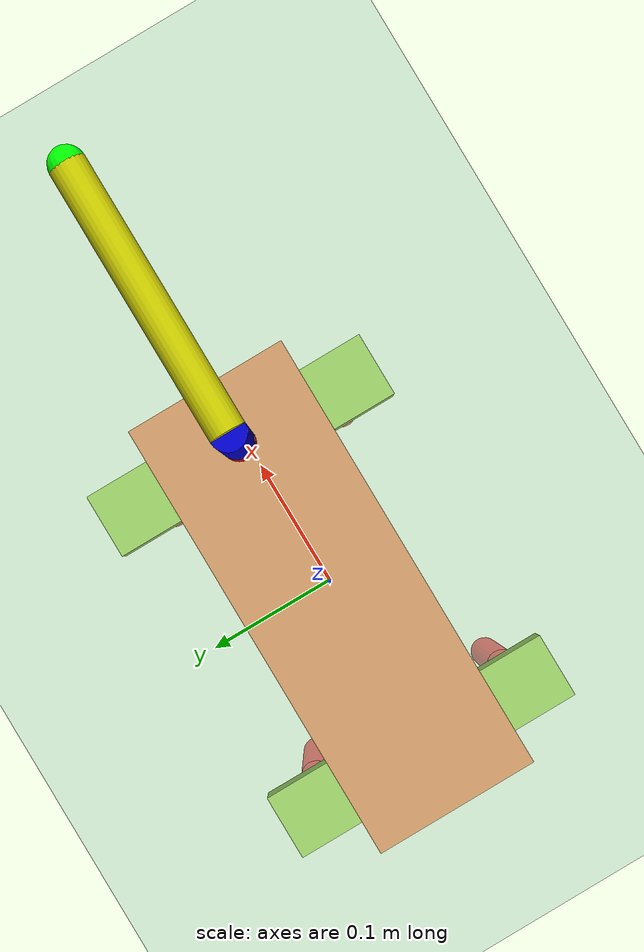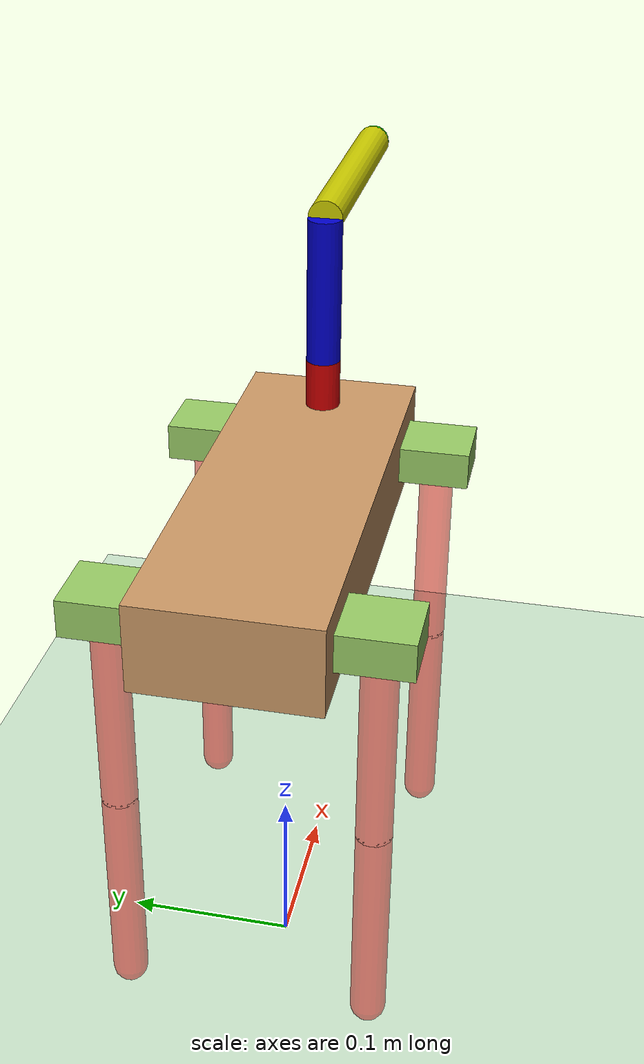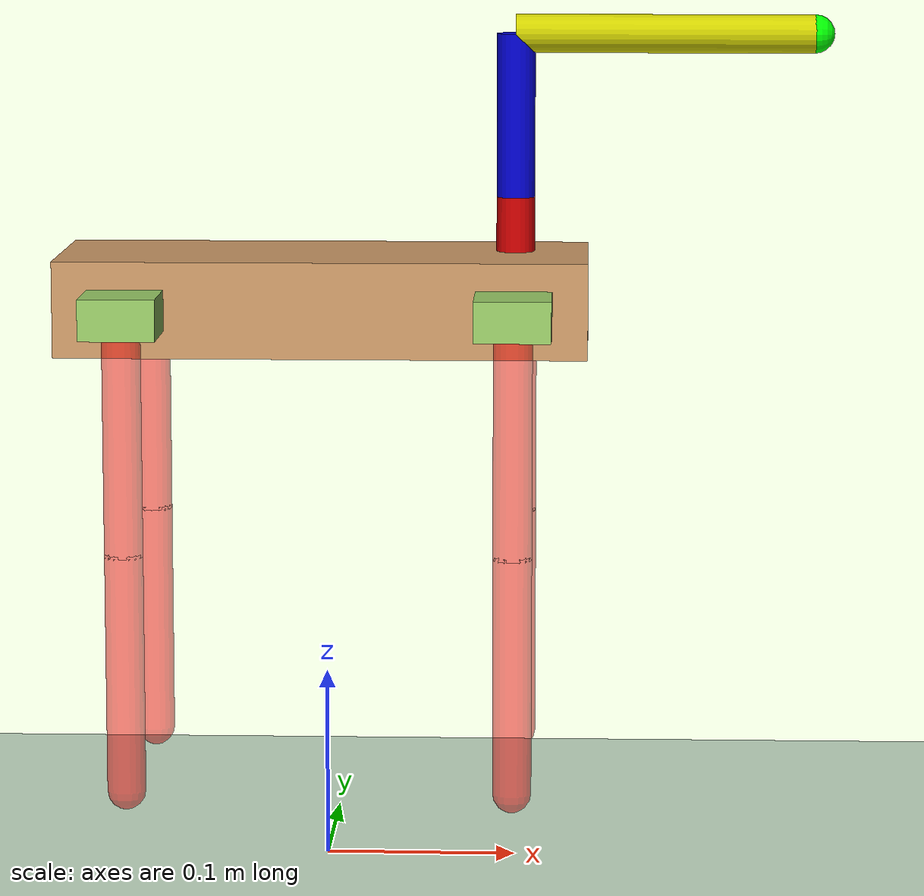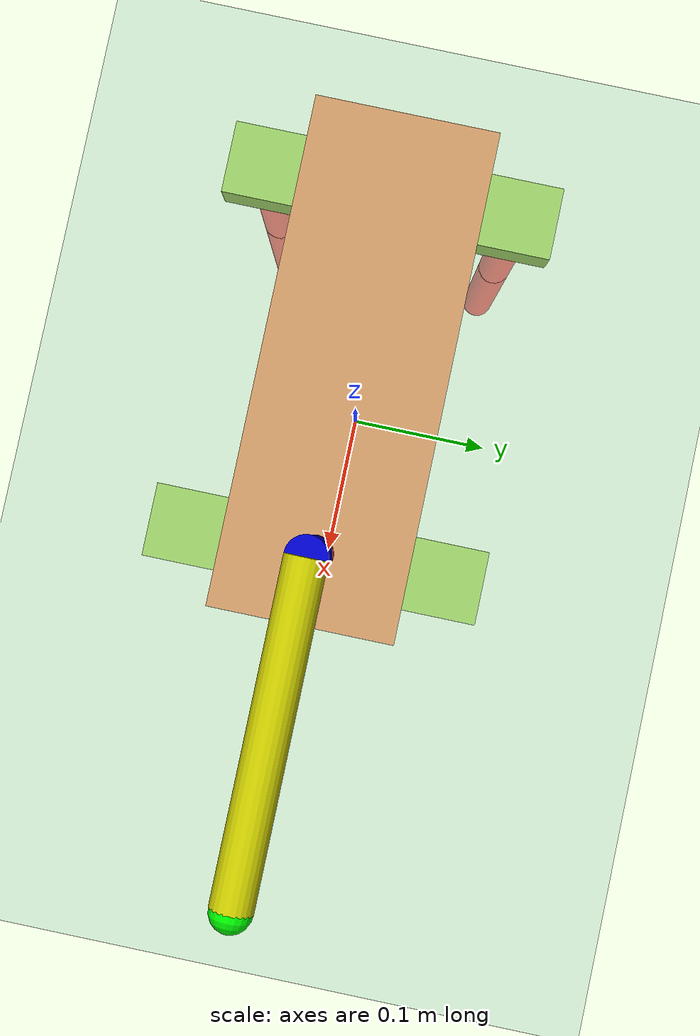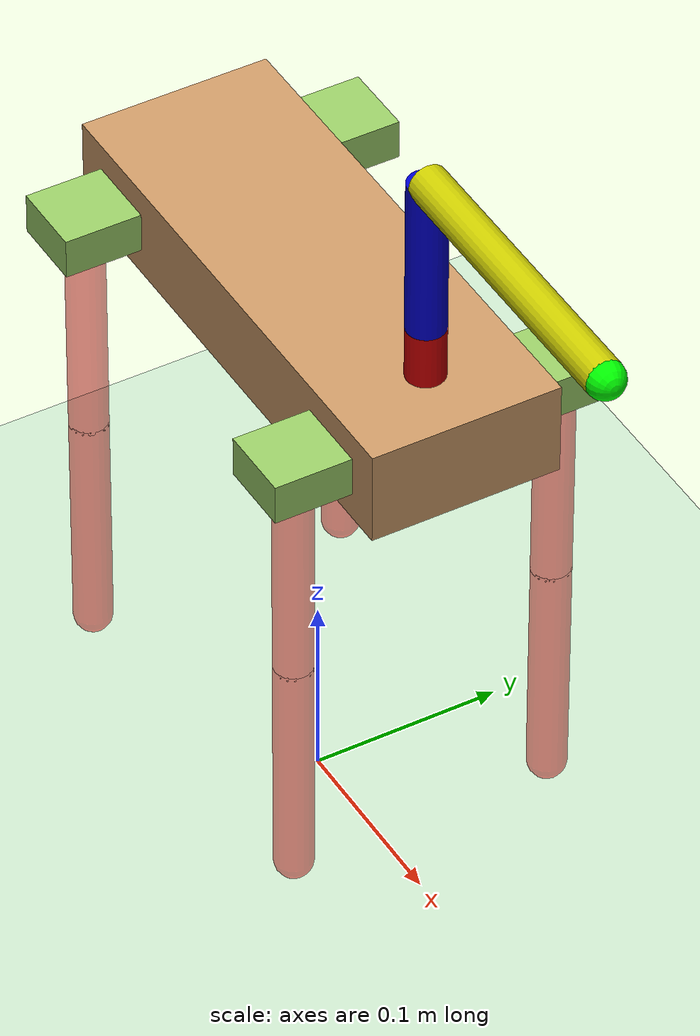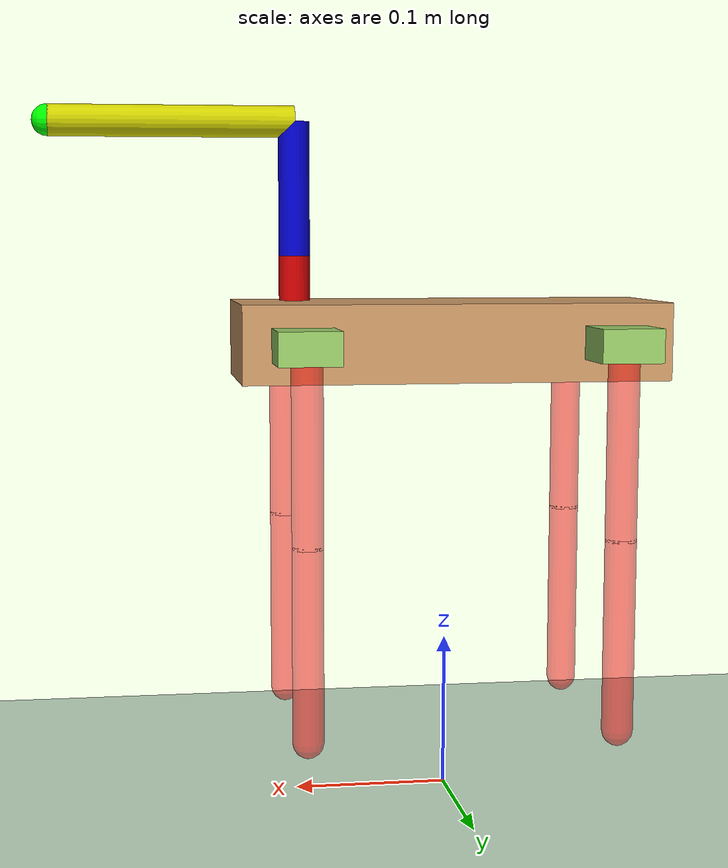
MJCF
<mujoco model="cheetah">
    <compiler angle="radian" coordinate="local" inertiafromgeom="false"/>

    <default>
        <joint armature="0.01936" stiffness="0"/>
        <geom conaffinity="0" condim="3" contype="1" friction="1.5 .1 .1" rgba="0.8 0.6 .4 1"/>
        <position forcelimited="true"/>
    </default>

    <size nstack="300000" nuser_geom="1"/>

    <asset>
        <texture builtin="gradient" height="100" rgb1="1 1 1" rgb2="0 0 0" type="skybox" width="100"/>
        <texture builtin="flat" height="1278" mark="cross" markrgb="1 1 1" name="texgeom" random="0.01"
                 rgb1="0.8 0.6 0.4" rgb2="0.8 0.6 0.4" type="cube" width="127"/>
        <texture builtin="checker" height="100" name="texplane" rgb1="0 0 0" rgb2="0.8 0.8 0.8" type="2d" width="100"/>
        <material name="MatPlane" reflectance="0.5" shininess="1" specular="1" texrepeat="60 60" texture="texplane"/>
        <material name="geom" texture="texgeom" texuniform="true"/>
    </asset>

    <worldbody>
        <geom conaffinity="1" condim="3" material="MatPlane" name="floor" pos="0 0 0" rgba="0.8 0.9 0.8 1"
              size="40 40 40" type="plane"/>
        <body name="torso" pos="0 0 0.3">
            <inertial pos="0 0 0" mass="0.56" diaginertia="0.0005532 0.0037619999999999997 0.004011000000000001"/>
            <geom pos="0 0 0" name="torso" size="0.138 0.05 0.025" type="box"/>
            <site name="imu_site" pos="0 0 0" size=".01 .01 .01" type="box"/>

            <body name="fr_module" pos="0.1 -0.04 0">
                <geom pos="0 -0.0132 0" name="fr_block" type="box" size="0.0197 0.0372 0.0107" rgba="0.6 0.8 .4 1"/>
                <joint axis="1 0 0" name="fr_x" pos="0 0 0" limited="true" range="-1.57 1.57" type="hinge"
                       damping="1.049"/>
                <inertial pos="0 0 0" mass="0.08" diaginertia="3.698e-05 7.127e-06 4.075e-05"/>
                <body name="fr" pos="0 -0.03 0">
                    <joint axis="0 1 0" name="fr_y" pos="0 0 0" limited="true" range="-1.57 1.57" type="hinge"
                           damping="1.049"/>
                    <inertial pos="0 0 0" mass="0.03"
                              diaginertia="1.3020833333333332e-05 1.3020833333333332e-05 1e-06"/>
                    <geom axisangle="0 1 0 0" name="fr" fromto="0 0 0 0 0 -0.125" size="0.01" type="capsule"
                          rgba="1 0 0 0.5" density="50"/>
                    <body name="fr2" pos="0 0 -0.1235">
                        <joint axis="0 1 0" name="fr_y2" pos="0 0 0" limited="true" range="-3.14 0.0" type="hinge"
                               damping="1.049"/>
                        <inertial pos="0 0 0" mass="0.03"
                                  diaginertia="1.3020833333333332e-05 1.3020833333333332e-05 1e-06"/>
                        <geom axisangle="0 1 0 0" name="fr_l2" fromto="0 0 0 0 0 -0.125" size="0.01" type="capsule"
                              rgba="1 0 0 0.5" density="50"/>
                    </body>
                </body>
            </body>

            <body name="fl_module" pos="0.1 0.04 0">
                <geom pos="0 0.0132 0" name="fl_block" type="box" size="0.0197 0.0372 0.0107" rgba="0.6 0.8 .4 1"/>
                <joint axis="1 0 0" name="fl_x" pos="0 0 0" limited="true" range="-1.57 1.57" type="hinge"
                       damping="1.049"/>
                <inertial pos="0 0 0" mass="0.08" diaginertia="3.698e-05 7.127e-06 4.075e-05"/>
                <body name="fl" pos="0 0.03 0">
                    <joint axis="0 1 0" name="fl_y" pos="0 0 0" limited="true" range="-1.57 1.57" type="hinge"
                           damping="1.049"/>
                    <inertial pos="0 0 0" mass="0.03"
                              diaginertia="1.3020833333333332e-05 1.3020833333333332e-05 1e-06"/>
                    <geom axisangle="0 1 0 0" name="fl" fromto="0 0 0 0 0 -0.125" size="0.01" type="capsule"
                          rgba="1 0 0 0.5" density="50"/>
                    <body name="fl2" pos="0 0 -0.1235">
                        <joint axis="0 1 0" name="fl_y2" pos="0 0 0" limited="true" range="-3.14 0.0" type="hinge"
                               damping="1.049"/>
                        <inertial pos="0 0 0" mass="0.03"
                                  diaginertia="1.3020833333333332e-05 1.3020833333333332e-05 1e-06"/>
                        <geom axisangle="0 1 0 0" name="fl_l2" fromto="0 0 0 0 0 -0.125" size="0.01" type="capsule"
                              rgba="1 0 0 0.5" density="50"/>
                    </body>
                </body>
            </body>

            <body name="br_module" pos="-0.1 -0.04 0">
                <geom pos="0 -0.0132 0" name="br_block" type="box" size="0.0197 0.0372 0.0107" rgba="0.6 0.8 .4 1"/>
                <joint axis="1 0 0" name="br_x" pos="0 0 0" limited="true" range="-1.57 1.57" type="hinge"
                       damping="1.049"/>
                <inertial pos="0 0 0" mass="0.08" diaginertia="3.698e-05 7.127e-06 4.075e-05"/>
                <body name="br" pos="0 -0.03 0">
                    <joint axis="0 1 0" name="br_y" pos="0 0 0" limited="true" range="-1.57 1.57" type="hinge"
                           damping="1.049"/>
                    <inertial pos="0 0 0" mass="0.03"
                              diaginertia="1.3020833333333332e-05 1.3020833333333332e-05 1e-06"/>
                    <geom axisangle="0 1 0 0" name="br" fromto="0 0 0 0 0 -0.125" size="0.01" type="capsule"
                          rgba="1 0 0 0.5" density="50"/>
                    <body name="br2" pos="0 0 -0.1235">
                        <joint axis="0 1 0" name="br_y2" pos="0 0 0" limited="true" range="-3.14 0.0" type="hinge"
                               damping="1.049"/>
                        <inertial pos="0 0 0" mass="0.03"
                                  diaginertia="1.3020833333333332e-05 1.3020833333333332e-05 1e-06"/>
                        <geom axisangle="0 1 0 0" name="br_l2" fromto="0 0 0 0 0 -0.125" size="0.01" type="capsule"
                              rgba="1 0 0 0.5" density="50"/>
                    </body>
                </body>
            </body>

            <body name="bl_module" pos="-0.1 0.04 0">
                <geom pos="0 0.0132 0" name="bl_block" type="box" size="0.0197 0.0372 0.0107" rgba="0.6 0.8 .4 1"/>
                <joint axis="1 0 0" name="bl_x" pos="0 0 0" limited="true" range="-1.57 1.57" type="hinge"
                       damping="1.049"/>
                <inertial pos="0 0 0" mass="0.08" diaginertia="3.698e-05 7.127e-06 4.075e-05"/>
                <body name="bl" pos="0 0.03 0">
                    <joint axis="0 1 0" name="bl_y" pos="0 0 0" limited="true" range="-1.57 1.57" type="hinge"
                           damping="1.049"/>
                    <inertial pos="0 0 0" mass="0.03"
                              diaginertia="1.3020833333333332e-05 1.3020833333333332e-05 1e-06"/>
                    <geom axisangle="0 1 0 0" name="bl" fromto="0 0 0 0 0 -0.125" size="0.01" type="capsule"
                          rgba="1 0 0 0.5" density="50"/>
                    <body name="bl2" pos="0 0 -0.1235">
                        <joint axis="0 1 0" name="bl_y2" pos="0 0 0" limited="true" range="-3.14 0.0" type="hinge"
                               damping="1.049"/>
                        <inertial pos="0 0 0" mass="0.03"
                                  diaginertia="1.3020833333333332e-05 1.3020833333333332e-05 1e-06"/>
                        <geom axisangle="0 1 0 0" name="bl_l2" fromto="0 0 0 0 0 -0.125" size="0.01" type="capsule"
                              rgba="1 0 0 0.5" density="50"/>
                    </body>
                </body>
            </body>

            <body name="shoulder" pos="0.1 0 0.026"  quat="0.707 0 0 -0.707">
                <inertial pos="0 0 0.01425" mass="0.00895354" diaginertia="8.29881e-07 8.29881e-07 4.47677e-07"/>
                <joint name="shoulder_joint" pos="0 0 0" axis="0 0 1" limited="true" range="-1.5708 1.5708" type="hinge"/>
                <geom size="0.01 0.01425" pos="0 0 0.01425" type="cylinder" rgba="0.8 0 0 1"/>
                <body name="upperarm" pos="0 0 0.0285">
                    <inertial pos="0 0 0.0425" mass="0.0267035" diaginertia="1.67453e-05 1.67453e-05 1.33518e-06"/>
                    <joint name="upperarm_joint" pos="0 0 0" axis="1 0 0" limited="true" range="-1.5708 1.5708" type="hinge"/>
                    <geom size="0.01 0.0425" pos="0 0 0.0425" type="cylinder" rgba="0 0 0.8 1"/>
                    <body name="lowerarm" pos="0 0 0.085">
                        <inertial pos="0 0.0836386 0" quat="0.707334 0.70688 0 0" mass="0.0528835"
                                  diaginertia="0.000122042 0.000122042 2.6023e-06"/>
                        <joint name="lowerarm_joint" pos="0 0 0" axis="1 0 0" limited="true" range="-1.5708 1.5708" type="hinge"/>
                        <geom size="0.01 0.0775" pos="0 0.0775 0" quat="0.707388 0.706825 0 0" type="cylinder"
                              rgba="0.8 0.8 0 1"/>
                        <geom size="0.01" type="sphere" pos="0 0.155 0" quat="0.707388 0.706825 0 0" rgba="0 1 0 1"/>
                    </body>
                </body>
            </body>

        </body>
    </worldbody>

    <actuator>
        <position gear="1" joint="fr_x" name="fr_x" kp="300" forcerange="-6.0 6.0"/>
        <position gear="1" joint="fr_y" name="fr_y" kp="300" forcerange="-6.0 6.0"/>
        <position gear="1" joint="fr_y2" name="fr_y2" kp="300" forcerange="-6.0 6.0"/>

        <position gear="1" joint="fl_x" name="fl_x" kp="300" forcerange="-6.0 6.0"/>
        <position gear="1" joint="fl_y" name="fl_y" kp="300" forcerange="-6.0 6.0"/>
        <position gear="1" joint="fl_y2" name="fl_y2" kp="300" forcerange="-6.0 6.0"/>

        <position gear="1" joint="br_x" name="br_x" kp="300" forcerange="-6.0 6.0"/>
        <position gear="1" joint="br_y" name="br_y" kp="300" forcerange="-6.0 6.0"/>
        <position gear="1" joint="br_y2" name="br_y2" kp="300" forcerange="-6.0 6.0"/>

        <position gear="1" joint="bl_x" name="bl_x" kp="300" forcerange="-6.0 6.0"/>
        <position gear="1" joint="bl_y" name="bl_y" kp="300" forcerange="-6.0 6.0"/>
        <position gear="1" joint="bl_y2" name="bl_y2" kp="300" forcerange="-6.0 6.0"/>

        <position gear="1" joint="shoulder_joint" name="shoulder_joint" kp="300" forcerange="-6.0 6.0"/>
        <position gear="1" joint="upperarm_joint" name="upperarm_joint" kp="300" forcerange="-6.0 6.0"/>
        <position gear="1" joint="lowerarm_joint" name="lowerarm_joint" kp="300" forcerange="-6.0 6.0"/>
    </actuator>
</mujoco>
